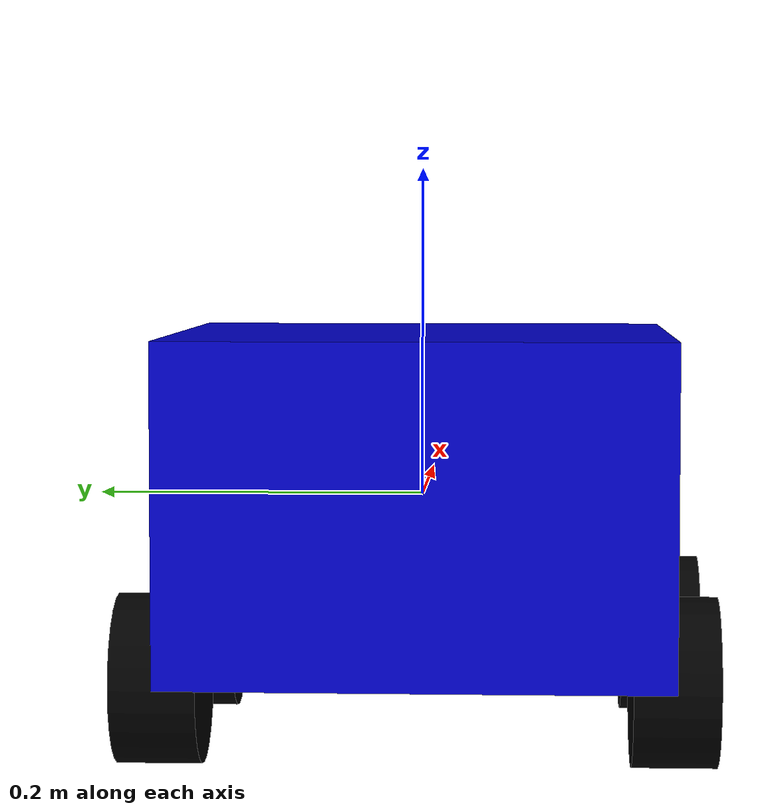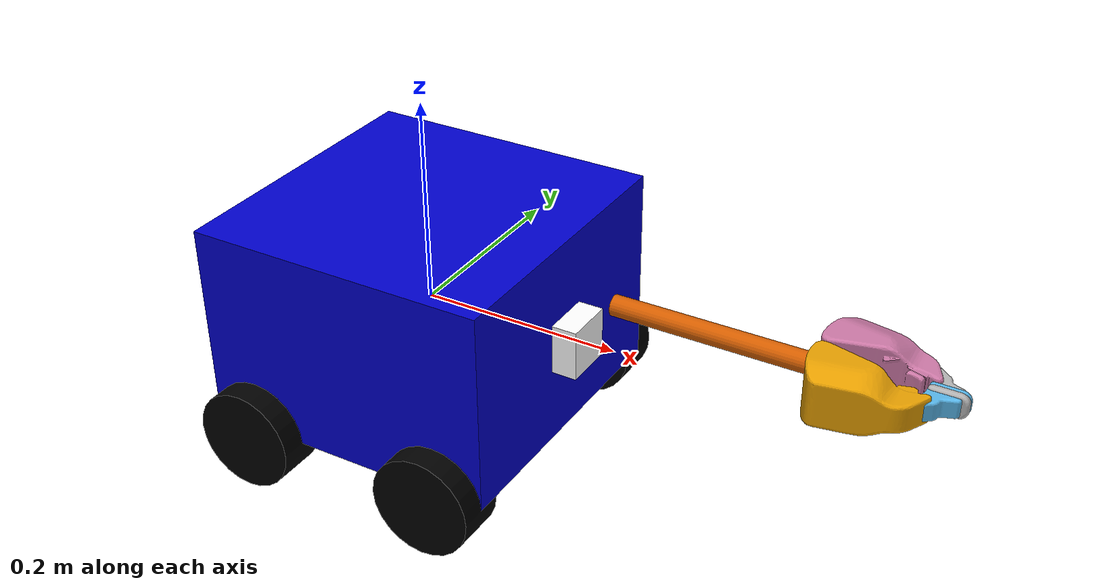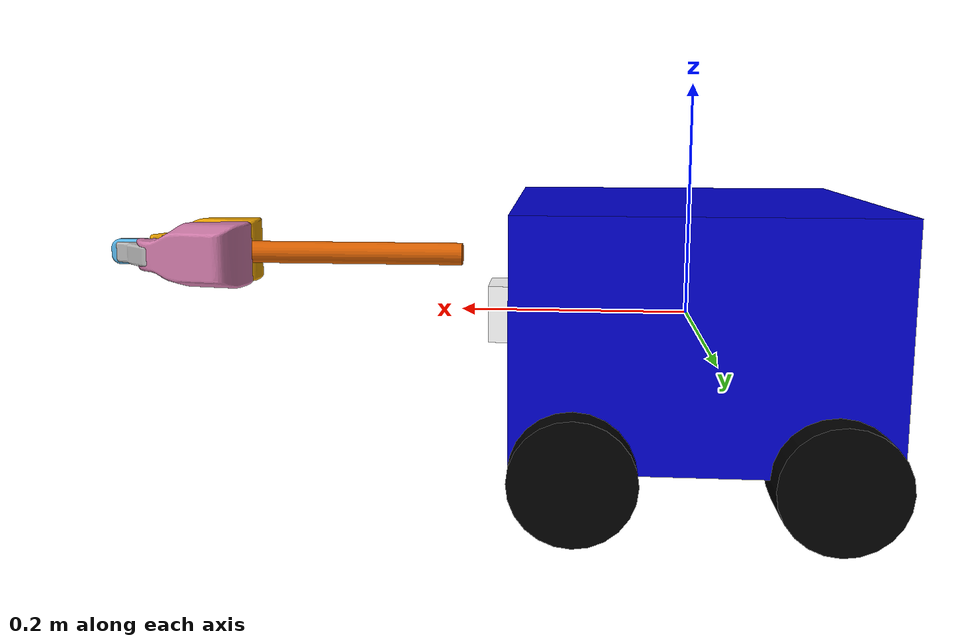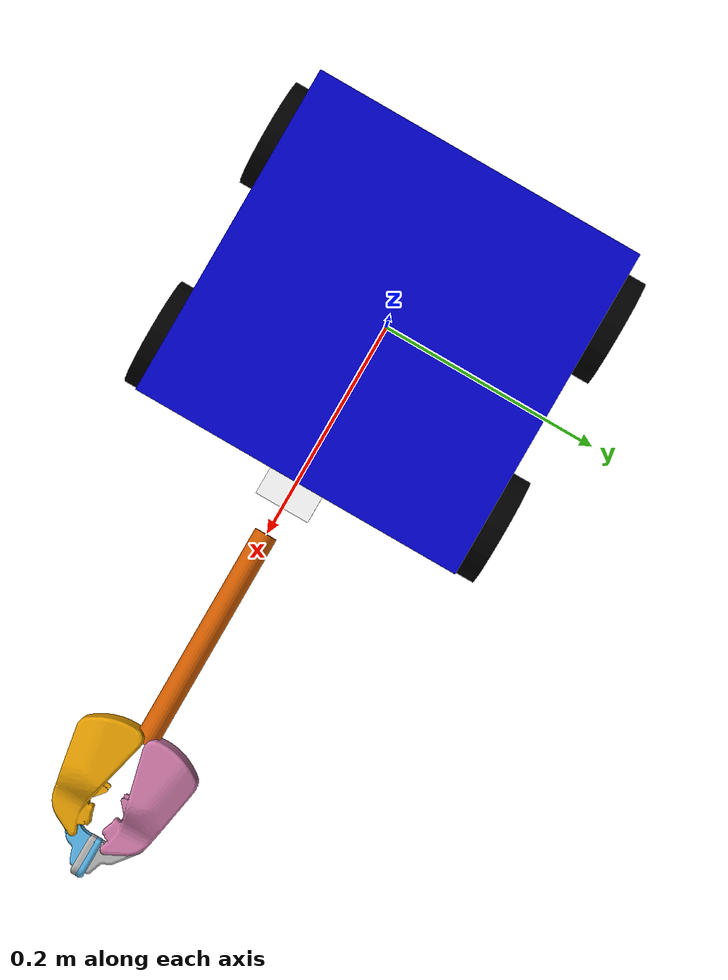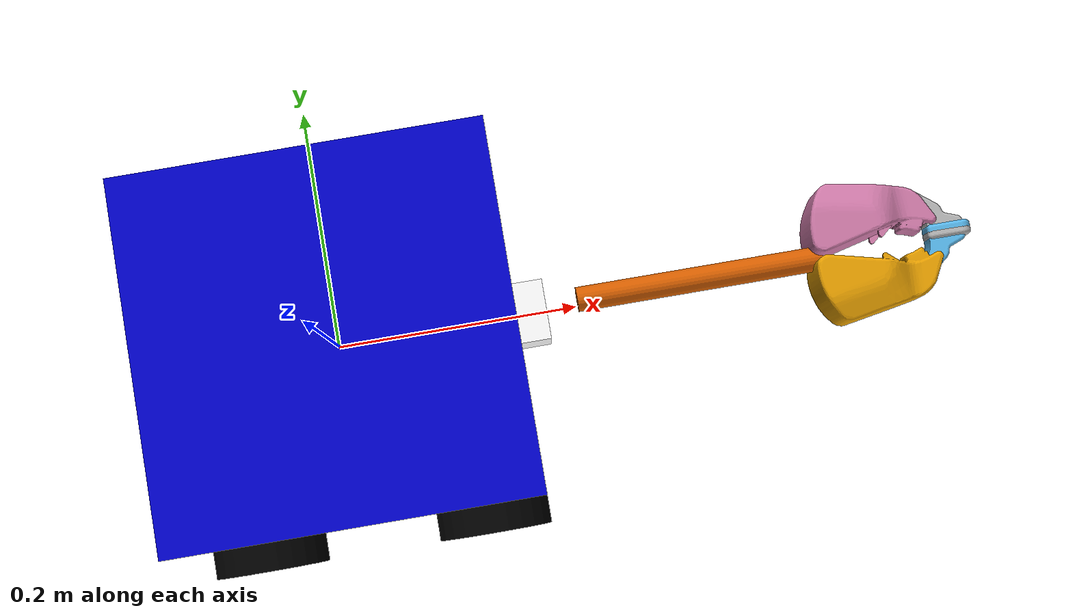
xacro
<?xml version="1.0"?>
<robot name="roscontrol" xmlns:xacro="http://ros.org/wiki/xacro">

  <xacro:property name="width" value="0.3" />
  <xacro:property name="polelen" value="0.2" />
  <xacro:property name="bodylen" value="0.2" />
  <xacro:property name="baselen" value="0.3" />
  <xacro:property name="wheeldiam" value="0.1" />
  <xacro:property name="pi" value="3.1415" />
  <xacro:property name="cameraSize" value="0.05" />
  <xacro:macro name="box_inertia" params="m x y z">
    <inertia  ixx="${m*(y*y+z*z)/12}" ixy = "0" ixz = "0"
      iyy="${m*(x*x+z*z)/12}" iyz = "0"
      izz="${m*(x*x+z*z)/12}"
    />
  </xacro:macro>
  <material name="blue">
    <color rgba="0 0 0.8 1"/>
  </material>

  <material name="black">
    <color rgba="0 0 0 1"/>
  </material>

  <material name="white">
    <color rgba="1 1 1 1"/>
  </material>

  <xacro:macro name="default_inertial" params="mass">
    <inertial>
      <mass value="${mass}" />
      <inertia ixx="1.0" ixy="0.0" ixz="0.0" iyy="1.0" iyz="0.0" izz="1.0" />
    </inertial>
  </xacro:macro>

  <link name="base_link">
    <visual>
      <geometry>
        <box size="${baselen} ${width} ${bodylen}"/>
      </geometry>
      <material name="blue"/>
    </visual>
    <collision>
      <geometry>
        <box size="${baselen} ${width} ${bodylen}"/>
      </geometry>
    </collision>
    <xacro:default_inertial mass="10"/>
  </link>

  <xacro:macro name="wheel" params="prefix suffix reflect side">

    <link name="${prefix}_${suffix}_wheel">
      <visual>
        <origin xyz="0 0 0" rpy="${pi/2} 0 0" />
        <geometry>
          <cylinder radius="${wheeldiam/2}" length="0.05"/>
        </geometry>
        <material name="black"/>
      </visual>
      <collision>
        <origin xyz="0 0 0" rpy="${pi/2} 0 0" />
        <geometry>
          <cylinder radius="${wheeldiam/2}" length="0.05"/>
        </geometry>
      </collision>
      <xacro:default_inertial mass="1"/>
    </link>
    <joint name="${prefix}_${suffix}_wheel_joint" type="continuous">
      <axis xyz="0 1 0" rpy="0 0 0" />
      <parent link="base_link"/>
      <child link="${prefix}_${suffix}_wheel"/>
      <origin xyz="${baselen*reflect/3} ${baselen/2*side} -${wheeldiam/2+.05}" rpy="0 0 0"/>
    </joint>
    <gazebo reference="${prefix}_${suffix}_wheel">
      <mu1 value="200.0"/>
      <mu2 value="100.0"/>
      <kp value="10000000.0" />
      <kd value="1.0" />
      <material>Gazebo/Grey</material>
    </gazebo>
    <transmission name="${prefix}_${suffix}_wheel_trans">
      <type>transmission_interface/SimpleTransmission</type>
      <actuator name="${prefix}_${suffix}_wheel_motor">
        <mechanicalReduction>1</mechanicalReduction>
      </actuator>
      <joint name="${prefix}_${suffix}_wheel_joint">
        <hardwareInterface>VelocityJointInterface</hardwareInterface>
      </joint>
    </transmission>

  </xacro:macro>
  <xacro:wheel prefix="left" suffix="front" reflect="1" side="1"/>
  <xacro:wheel prefix="left" suffix="back" reflect="-1" side="1"/>
  <xacro:wheel prefix="right" suffix="front" reflect="1" side="-1"/>
  <xacro:wheel prefix="right" suffix="back" reflect="-1" side="-1"/>
  <joint name="gripper_extension" type="prismatic">
    <parent link="base_link"/>
    <child link="gripper_pole"/>
    <limit effort="1000.0" upper="${width*2-.02}" lower="0" velocity="0.5"/>
    <origin rpy="0 0 0" xyz="0.2 0 0.05"/>
    <limit effort="30" velocity="0.2"/>
    <dynamics damping="0.0" friction="0.0"/>
  </joint>

  <link name="gripper_pole">
    <visual>
      <geometry>
        <cylinder length="${polelen}" radius="0.01"/>
      </geometry>
      <origin xyz="${polelen/2} 0 0" rpy="0 ${pi/2} 0 "/>
    </visual>
    <collision>
      <geometry>
        <cylinder length="${polelen}" radius="0.01"/>
      </geometry>
      <origin xyz="${polelen/2} 0 0" rpy="0 ${pi/2} 0 "/>
    </collision>
    <xacro:default_inertial mass="0.05"/>
  </link>
  <transmission name="gripper_extension_trans">
    <type>transmission_interface/SimpleTransmission</type>
    <actuator name="gripper_extension_motor">
      <mechanicalReduction>1</mechanicalReduction>
    </actuator>
    <joint name="gripper_extension">
      <hardwareInterface>PositionJointInterface</hardwareInterface>
    </joint>
  </transmission>

  <xacro:macro name="gripper" params="prefix reflect">
    <joint name="${prefix}_gripper_joint" type="revolute">
      <axis xyz="0 0 ${reflect}"/>
      <limit effort="1000.0" lower="0.0" upper="0.548" velocity="0.5"/>
      <origin rpy="0 0 0" xyz="${polelen} ${reflect*0.01} 0"/>
      <parent link="gripper_pole"/>
      <child link="${prefix}_gripper"/>
      <limit effort="30" velocity="1.0"/>
      <dynamics damping="0.0" friction="0.0"/>
    </joint>
    <link name="${prefix}_gripper">
      <visual>
        <origin rpy="${(reflect-1)/2*pi} 0 0" xyz="0 0 0"/>
        <geometry>
          <mesh filename="package://urdf_tutorial/meshes/l_finger.dae"/>
        </geometry>
      </visual>
      <collision>
        <geometry>
          <mesh filename="package://urdf_tutorial/meshes/l_finger.dae"/>
        </geometry>
        <origin rpy="${(reflect-1)/2*pi} 0 0" xyz="0 0 0"/>
      </collision>
      <xacro:default_inertial mass="0.05"/>
    </link>
    <transmission name="${prefix}_gripper_trans">
      <type>transmission_interface/SimpleTransmission</type>
      <actuator name="${prefix}_gripper_motor">
        <mechanicalReduction>1</mechanicalReduction>
      </actuator>
      <joint name="${prefix}_gripper_joint">
        <hardwareInterface>PositionJointInterface</hardwareInterface>
      </joint>
    </transmission>

    <joint name="${prefix}_tip_joint" type="fixed">
      <parent link="${prefix}_gripper"/>
      <child link="${prefix}_tip"/>
    </joint>
    <link name="${prefix}_tip">
      <visual>
        <origin rpy="${(reflect-1)/2*pi} 0 0" xyz="0.09137 0.00495 0"/>
        <geometry>
          <mesh filename="package://urdf_tutorial/meshes/l_finger_tip.dae"/>
        </geometry>
      </visual>
      <collision>
        <geometry>
          <mesh filename="package://urdf_tutorial/meshes/l_finger_tip.dae"/>
        </geometry>
        <origin rpy="${(reflect-1)/2*pi} 0 0" xyz="0.09137 0.00495 0"/>
      </collision>
      <xacro:default_inertial mass="0.05"/>
    </link>
  </xacro:macro>

  <xacro:gripper prefix="left" reflect="1" />
  <xacro:gripper prefix="right" reflect="-1" />
  <link name="camera">
    <collision>
      <origin xyz="0 0 0" rpy="0 0 0"/>
      <geometry>
        <box size="${cameraSize} ${cameraSize} ${cameraSize}"/>
      </geometry>
    </collision>

    <visual>
      <origin xyz="0 0 0" rpy="0 0 0"/>
      <geometry>
        <box size="${cameraSize} ${cameraSize} ${cameraSize}"/>
      </geometry>
      <material name="white"/>
    </visual>

    <inertial>
      <mass value="0.01" />
      <origin xyz="0 0 0" rpy="0 0 0"/>
      <box_inertia m="0.01" x="${cameraSize}" y="${cameraSize}" z="${cameraSize}" />
      <inertia ixx="1e-6" ixy="0" ixz="0" iyy="1e-6" iyz="0" izz="1e-6" />
    </inertial>
  </link>

  <joint name="camera_joint" type="fixed">
    <axis xyz="0 1 0" />
    <origin xyz=".15 0 0" rpy="0 0 0"/>
    <parent link="base_link"/>
    <child link="camera"/>
  </joint>

  <!-- Gazebo plugin for ROS Control -->
  <gazebo>
    <plugin name="gazebo_ros_control" filename="libgazebo_ros_control.so">
      <robotNamespace>/mugator_manip</robotNamespace>
    <robotSimType>gazebo_ros_control/DefaultRobotHWSim</robotSimType>
    <legacyModeNS>true</legacyModeNS>
    </plugin>
  </gazebo>
   <gazebo reference="camera">
    <material>Gazebo/Blue</material>
    <sensor type="camera" name="camera1">
      <update_rate>30.0</update_rate>
      <camera name="head">
        <horizontal_fov>1.3962634</horizontal_fov>
        <image>
          <width>800</width>
          <height>800</height>
          <format>R8G8B8</format>
        </image>
        <clip>
          <near>0.02</near>
          <far>300</far>
        </clip>
      </camera>
      <plugin name="camera_controller" filename="libgazebo_ros_camera.so">
        <alwaysOn>true</alwaysOn>
        <updateRate>0.0</updateRate>
        <cameraName>mybot/camera1</cameraName>
        <imageTopicName>image_raw</imageTopicName>
        <cameraInfoTopicName>camera_info</cameraInfoTopicName>
        <frameName>camera</frameName>
        <hackBaseline>0.07</hackBaseline>
        <distortionK1>0.0</distortionK1>
        <distortionK2>0.0</distortionK2>
        <distortionK3>0.0</distortionK3>
        <distortionT1>0.0</distortionT1>
        <distortionT2>0.0</distortionT2>
      </plugin>
    </sensor>
  </gazebo>

</robot>
